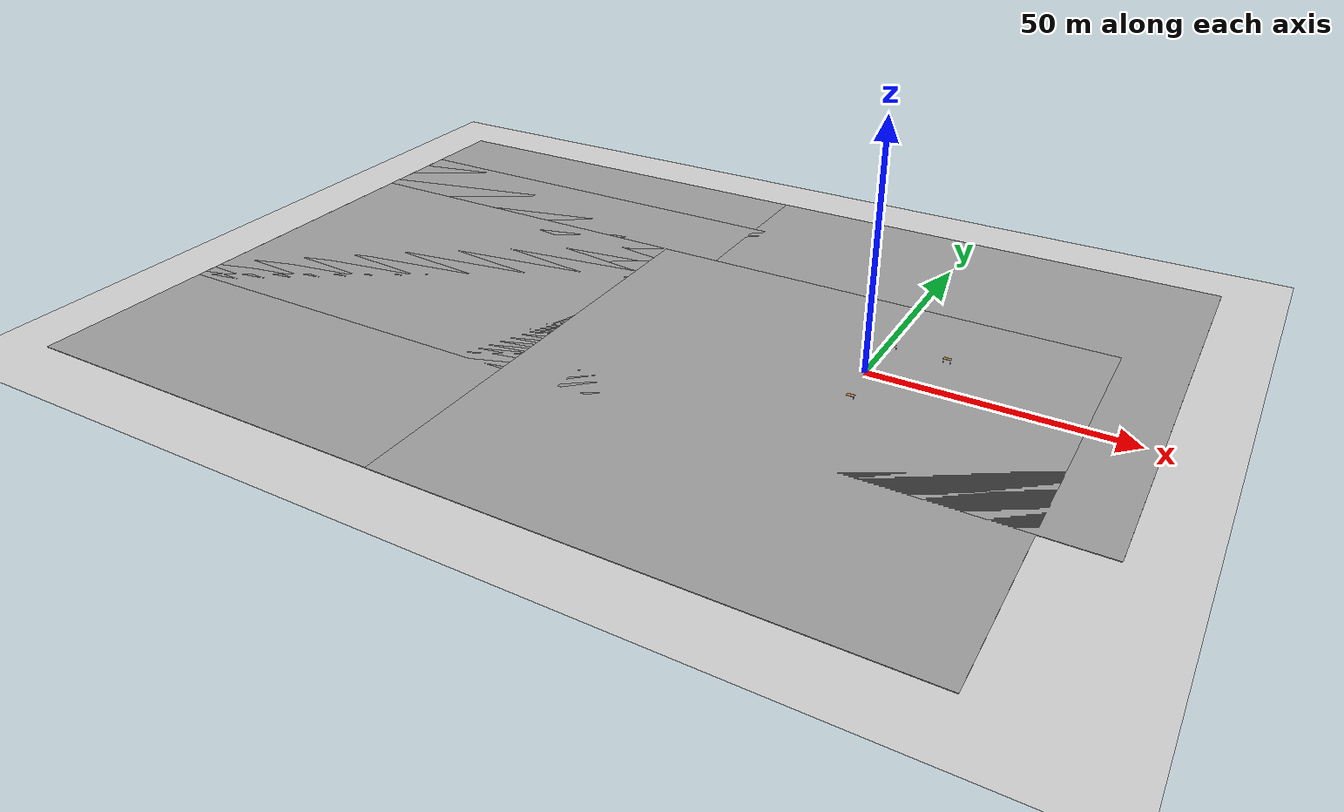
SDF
<sdf version="1.6">
 <world name="default">
  <model name="ground_plane">
   <static>1</static>
   <link name="link">
    <collision name="collision">
     <geometry><plane><normal>0 0 1</normal><size>100 100</size></plane></geometry>
     <surface><friction><ode><mu>100</mu><mu2>50</mu2></ode></friction></surface>
    </collision>
    <visual name="visual">
     <cast_shadows>0</cast_shadows>
     <geometry><plane><normal>0 0 1</normal><size>100 100</size></plane></geometry>
     <material>
      <script><uri>file://media/materials/scripts/gazebo.material</uri><name>Gazebo/Grey</name></script>
     </material>
    </visual>
   </link>
  </model>
  <model name="ground_plane_0">
   <static>1</static>
   <link name="link">
    <collision name="collision">
     <geometry><plane><normal>0 0 1</normal><size>100 100</size></plane></geometry>
     <surface><friction><ode><mu>100</mu><mu2>50</mu2></ode></friction></surface>
    </collision>
    <visual name="visual">
     <cast_shadows>0</cast_shadows>
     <geometry><plane><normal>0 0 1</normal><size>100 100</size></plane></geometry>
     <material>
      <script><uri>file://media/materials/scripts/gazebo.material</uri><name>Gazebo/Grey</name></script>
     </material>
    </visual>
   </link>
   <pose>-90.9597 -0.127631 0 0 -0 0</pose>
  </model>
  <model name="ground_plane_2">
   <static>1</static>
   <link name="link">
    <collision name="collision">
     <geometry><plane><normal>0 0 1</normal><size>100 100</size></plane></geometry>
     <surface><friction><ode><mu>100</mu><mu2>50</mu2></ode></friction></surface>
    </collision>
    <visual name="visual">
     <cast_shadows>0</cast_shadows>
     <geometry><plane><normal>0 0 1</normal><size>100 100</size></plane></geometry>
     <material>
      <script><uri>file://media/materials/scripts/gazebo.material</uri><name>Gazebo/Grey</name></script>
     </material>
    </visual>
   </link>
   <pose>-91.0464 17.2441 0 0 -0 0</pose>
  </model>
  <model name="ground_plane_3">
   <static>1</static>
   <link name="link">
    <collision name="collision">
     <geometry><plane><normal>0 0 1</normal><size>100 100</size></plane></geometry>
     <surface><friction><ode><mu>100</mu><mu2>50</mu2></ode></friction></surface>
    </collision>
    <visual name="visual">
     <cast_shadows>0</cast_shadows>
     <geometry><plane><normal>0 0 1</normal><size>100 100</size></plane></geometry>
     <material>
      <script><uri>file://media/materials/scripts/gazebo.material</uri><name>Gazebo/Grey</name></script>
     </material>
    </visual>
   </link>
   <pose>3.00219 17.3131 0 0 -0 0</pose>
  </model>
  <model name="ground_plane_6">
   <static>1</static>
   <link name="link">
    <collision name="collision">
     <geometry><plane><normal>0 0 1</normal><size>100 100</size></plane></geometry>
     <surface><friction><ode><mu>100</mu><mu2>50</mu2></ode></friction></surface>
    </collision>
    <visual name="visual">
     <cast_shadows>0</cast_shadows>
     <geometry><plane><normal>0 0 1</normal><size>100 100</size></plane></geometry>
     <material>
      <script><uri>file://media/materials/scripts/gazebo.material</uri><name>Gazebo/Grey</name></script>
     </material>
    </visual>
   </link>
   <pose>-9.72801 -20.1818 0 0 -0 0</pose>
  </model>
  <model name="ground_plane_7">
   <static>1</static>
   <link name="link">
    <collision name="collision">
     <geometry><plane><normal>0 0 1</normal><size>100 100</size></plane></geometry>
     <surface><friction><ode><mu>100</mu><mu2>50</mu2></ode></friction></surface>
    </collision>
    <visual name="visual">
     <cast_shadows>0</cast_shadows>
     <geometry><plane><normal>0 0 1</normal><size>100 100</size></plane></geometry>
     <material>
      <script><uri>file://media/materials/scripts/gazebo.material</uri><name>Gazebo/Grey</name></script>
     </material>
    </visual>
   </link>
   <pose>-91.017 -20.1275 0 0 -0 0</pose>
  </model>
  <model name="table">
   <static>1</static>
   <link name="link">
    <collision name="surface">
     <pose>0 0 1 0 -0 0</pose>
     <geometry><box><size>1.5 0.8 0.03</size></box></geometry>
     <surface><friction><ode><mu>0.6</mu><mu2>0.6</mu2></ode></friction></surface>
    </collision>
    <visual name="visual1">
     <pose>0 0 1 0 -0 0</pose>
     <geometry><box><size>1.5 0.8 0.03</size></box></geometry>
     <material>
      <script><uri>file://media/materials/scripts/gazebo.material</uri><name>Gazebo/Wood</name></script>
     </material>
    </visual>
    <collision name="front_left_leg">
     <pose>0.68 0.38 0.5 0 -0 0</pose>
     <geometry><cylinder><radius>0.02</radius><length>1</length></cylinder></geometry>
    </collision>
    <visual name="front_left_leg">
     <pose>0.68 0.38 0.5 0 -0 0</pose>
     <geometry><cylinder><radius>0.02</radius><length>1</length></cylinder></geometry>
     <material>
      <script><uri>file://media/materials/scripts/gazebo.material</uri><name>Gazebo/Grey</name></script>
     </material>
    </visual>
    <collision name="front_right_leg">
     <pose>0.68 -0.38 0.5 0 -0 0</pose>
     <geometry><cylinder><radius>0.02</radius><length>1</length></cylinder></geometry>
    </collision>
    <visual name="front_right_leg">
     <pose>0.68 -0.38 0.5 0 -0 0</pose>
     <geometry><cylinder><radius>0.02</radius><length>1</length></cylinder></geometry>
     <material>
      <script><uri>file://media/materials/scripts/gazebo.material</uri><name>Gazebo/Grey</name></script>
     </material>
    </visual>
    <collision name="back_right_leg">
     <pose>-0.68 -0.38 0.5 0 -0 0</pose>
     <geometry><cylinder><radius>0.02</radius><length>1</length></cylinder></geometry>
    </collision>
    <visual name="back_right_leg">
     <pose>-0.68 -0.38 0.5 0 -0 0</pose>
     <geometry><cylinder><radius>0.02</radius><length>1</length></cylinder></geometry>
     <material>
      <script><uri>file://media/materials/scripts/gazebo.material</uri><name>Gazebo/Grey</name></script>
     </material>
    </visual>
    <collision name="back_left_leg">
     <pose>-0.68 0.38 0.5 0 -0 0</pose>
     <geometry><cylinder><radius>0.02</radius><length>1</length></cylinder></geometry>
    </collision>
    <visual name="back_left_leg">
     <pose>-0.68 0.38 0.5 0 -0 0</pose>
     <geometry><cylinder><radius>0.02</radius><length>1</length></cylinder></geometry>
     <material>
      <script><uri>file://media/materials/scripts/gazebo.material</uri><name>Gazebo/Grey</name></script>
     </material>
    </visual>
   </link>
   <pose>1.22981 10.8822 0 0 -0 0</pose>
  </model>
  <model name="table_0">
   <static>1</static>
   <link name="link">
    <collision name="surface">
     <pose>0 0 1 0 -0 0</pose>
     <geometry><box><size>1.5 0.8 0.03</size></box></geometry>
     <surface><friction><ode><mu>0.6</mu><mu2>0.6</mu2></ode></friction></surface>
    </collision>
    <visual name="visual1">
     <pose>0 0 1 0 -0 0</pose>
     <geometry><box><size>1.5 0.8 0.03</size></box></geometry>
     <material>
      <script><uri>file://media/materials/scripts/gazebo.material</uri><name>Gazebo/Wood</name></script>
     </material>
    </visual>
    <collision name="front_left_leg">
     <pose>0.68 0.38 0.5 0 -0 0</pose>
     <geometry><cylinder><radius>0.02</radius><length>1</length></cylinder></geometry>
    </collision>
    <visual name="front_left_leg">
     <pose>0.68 0.38 0.5 0 -0 0</pose>
     <geometry><cylinder><radius>0.02</radius><length>1</length></cylinder></geometry>
     <material>
      <script><uri>file://media/materials/scripts/gazebo.material</uri><name>Gazebo/Grey</name></script>
     </material>
    </visual>
    <collision name="front_right_leg">
     <pose>0.68 -0.38 0.5 0 -0 0</pose>
     <geometry><cylinder><radius>0.02</radius><length>1</length></cylinder></geometry>
    </collision>
    <visual name="front_right_leg">
     <pose>0.68 -0.38 0.5 0 -0 0</pose>
     <geometry><cylinder><radius>0.02</radius><length>1</length></cylinder></geometry>
     <material>
      <script><uri>file://media/materials/scripts/gazebo.material</uri><name>Gazebo/Grey</name></script>
     </material>
    </visual>
    <collision name="back_right_leg">
     <pose>-0.68 -0.38 0.5 0 -0 0</pose>
     <geometry><cylinder><radius>0.02</radius><length>1</length></cylinder></geometry>
    </collision>
    <visual name="back_right_leg">
     <pose>-0.68 -0.38 0.5 0 -0 0</pose>
     <geometry><cylinder><radius>0.02</radius><length>1</length></cylinder></geometry>
     <material>
      <script><uri>file://media/materials/scripts/gazebo.material</uri><name>Gazebo/Grey</name></script>
     </material>
    </visual>
    <collision name="back_left_leg">
     <pose>-0.68 0.38 0.5 0 -0 0</pose>
     <geometry><cylinder><radius>0.02</radius><length>1</length></cylinder></geometry>
    </collision>
    <visual name="back_left_leg">
     <pose>-0.68 0.38 0.5 0 -0 0</pose>
     <geometry><cylinder><radius>0.02</radius><length>1</length></cylinder></geometry>
     <material>
      <script><uri>file://media/materials/scripts/gazebo.material</uri><name>Gazebo/Grey</name></script>
     </material>
    </visual>
   </link>
   <pose>12.1097 11.1001 0 0 -0 0</pose>
  </model>
  <model name="table_4">
   <static>1</static>
   <link name="link">
    <collision name="surface">
     <pose>0 0 1 0 -0 0</pose>
     <geometry><box><size>1.5 0.8 0.03</size></box></geometry>
     <surface><friction><ode><mu>0.6</mu><mu2>0.6</mu2></ode></friction></surface>
    </collision>
    <visual name="visual1">
     <pose>0 0 1 0 -0 0</pose>
     <geometry><box><size>1.5 0.8 0.03</size></box></geometry>
     <material>
      <script><uri>file://media/materials/scripts/gazebo.material</uri><name>Gazebo/Wood</name></script>
     </material>
    </visual>
    <collision name="front_left_leg">
     <pose>0.68 0.38 0.5 0 -0 0</pose>
     <geometry><cylinder><radius>0.02</radius><length>1</length></cylinder></geometry>
    </collision>
    <visual name="front_left_leg">
     <pose>0.68 0.38 0.5 0 -0 0</pose>
     <geometry><cylinder><radius>0.02</radius><length>1</length></cylinder></geometry>
     <material>
      <script><uri>file://media/materials/scripts/gazebo.material</uri><name>Gazebo/Grey</name></script>
     </material>
    </visual>
    <collision name="front_right_leg">
     <pose>0.68 -0.38 0.5 0 -0 0</pose>
     <geometry><cylinder><radius>0.02</radius><length>1</length></cylinder></geometry>
    </collision>
    <visual name="front_right_leg">
     <pose>0.68 -0.38 0.5 0 -0 0</pose>
     <geometry><cylinder><radius>0.02</radius><length>1</length></cylinder></geometry>
     <material>
      <script><uri>file://media/materials/scripts/gazebo.material</uri><name>Gazebo/Grey</name></script>
     </material>
    </visual>
    <collision name="back_right_leg">
     <pose>-0.68 -0.38 0.5 0 -0 0</pose>
     <geometry><cylinder><radius>0.02</radius><length>1</length></cylinder></geometry>
    </collision>
    <visual name="back_right_leg">
     <pose>-0.68 -0.38 0.5 0 -0 0</pose>
     <geometry><cylinder><radius>0.02</radius><length>1</length></cylinder></geometry>
     <material>
      <script><uri>file://media/materials/scripts/gazebo.material</uri><name>Gazebo/Grey</name></script>
     </material>
    </visual>
    <collision name="back_left_leg">
     <pose>-0.68 0.38 0.5 0 -0 0</pose>
     <geometry><cylinder><radius>0.02</radius><length>1</length></cylinder></geometry>
    </collision>
    <visual name="back_left_leg">
     <pose>-0.68 0.38 0.5 0 -0 0</pose>
     <geometry><cylinder><radius>0.02</radius><length>1</length></cylinder></geometry>
     <material>
      <script><uri>file://media/materials/scripts/gazebo.material</uri><name>Gazebo/Grey</name></script>
     </material>
    </visual>
   </link>
   <pose>1.22037 -10.2887 0 0 -0 0</pose>
  </model>
 </world>
</sdf>
